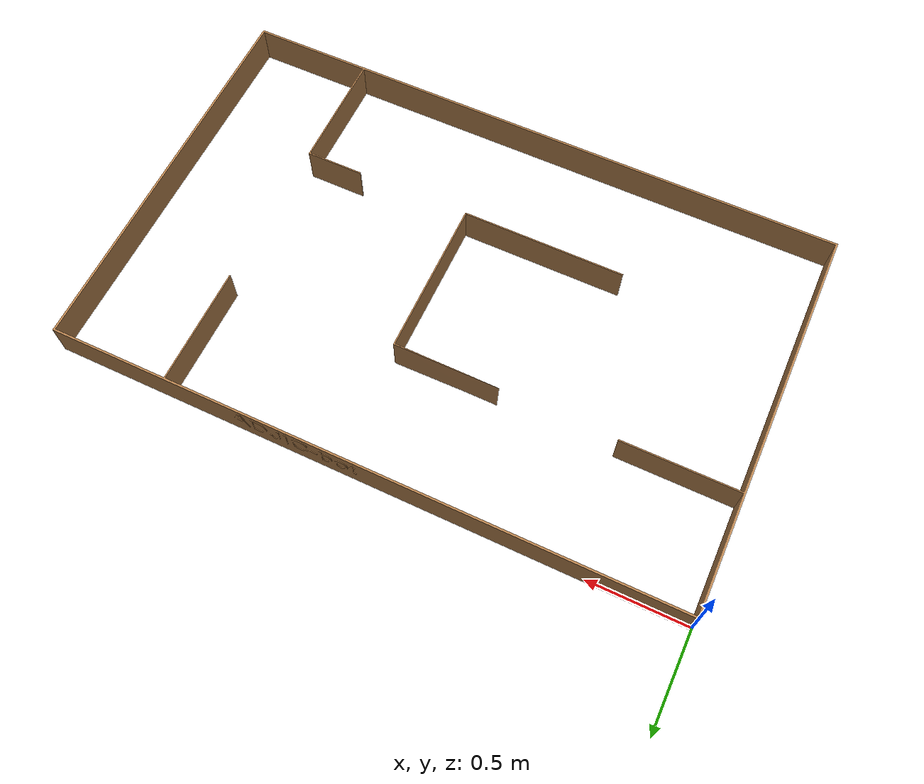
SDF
<?xml version="1.0"?>

<sdf version="1.5">
  <model name="simulation_map">

    <static>true</static>
    <pose>0 0 0 0 0 0</pose>
    <link name="walls">
      <collision name="collision">
        <geometry>
            <mesh>
                <uri>model://challenge6/meshes/Mapa_pista_ADJIC v4.dae</uri>
            </mesh>
        </geometry>
        <surface>
          <friction>
            <ode>
              <mu>0.6</mu>
              <mu2>0.6</mu2>
            </ode>
          </friction>
        </surface>
      </collision>
      <visual name="visual">
        <geometry>
            <mesh>
                <uri>model://challenge6/meshes/Mapa_pista_ADJIC v4.dae</uri>
            </mesh>
        </geometry>
        <material>
          <script>
            <uri>file://media/materials/scripts/gazebo.material</uri>
            <name>Gazebo/Wood</name>
          </script>
        </material>
        <cast_shadows>false</cast_shadows>
      </visual>
    </link>
  </model>
</sdf>
